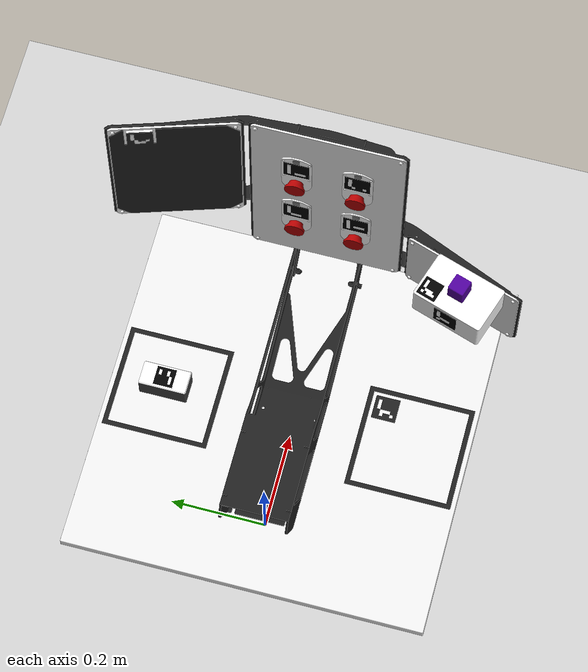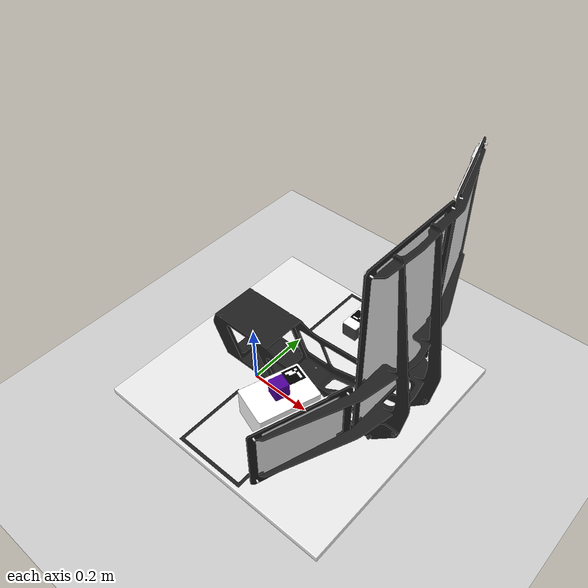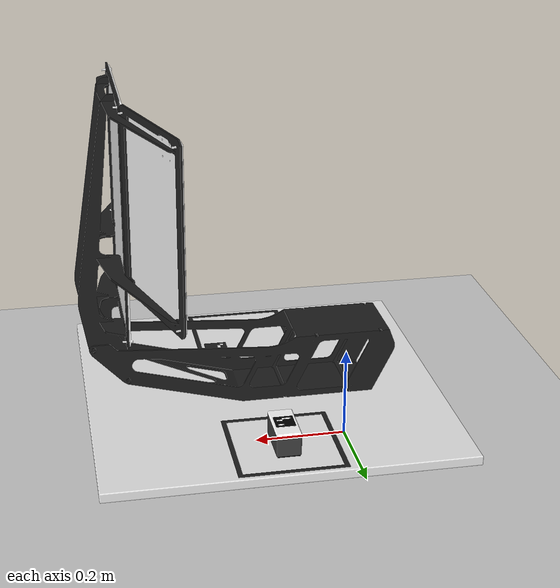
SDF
<sdf version="1.7">
 <world name="default">
  <light name="sun" type="directional">
   <pose>0 0 10 0 -0 0</pose>
   <diffuse>0.8 0.8 0.8 1</diffuse>
   <specular>0.2 0.2 0.2 1</specular>
   <attenuation>
    <range>1000</range>
    <constant>0.9</constant>
    <linear>0.01</linear>
    <quadratic>0.001</quadratic>
   </attenuation>
   <direction>-0.5 0.1 -0.9</direction>
   <spot><inner_angle>0</inner_angle><outer_angle>0</outer_angle><falloff>0</falloff></spot>
  </light>
  <model name="ground_plane">
   <static>1</static>
   <link name="link">
    <collision name="collision">
     <geometry><plane><normal>0 0 1</normal><size>100 100</size></plane></geometry>
     <surface>
      <contact><collide_bitmask>65535</collide_bitmask></contact>
      <friction><ode><mu>100</mu><mu2>50</mu2></ode></friction>
     </surface>
    </collision>
    <visual name="visual">
     <cast_shadows>0</cast_shadows>
     <geometry><plane><normal>0 0 1</normal><size>100 100</size></plane></geometry>
     <material>
      <script><uri>file://media/materials/scripts/gazebo.material</uri><name>Gazebo/Grey</name></script>
     </material>
    </visual>
   </link>
  </model>
  <gravity>0 0 -9.8</gravity>
  <magnetic_field>6e-06 2.3e-05 -4.2e-05</magnetic_field>
  <atmosphere type="adiabatic"/>
  <physics type="ode">
   <max_step_size>0.001</max_step_size>
   <real_time_factor>1</real_time_factor>
   <real_time_update_rate>1000</real_time_update_rate>
  </physics>
  <scene><ambient>0.4 0.4 0.4 1</ambient><background>0.7 0.7 0.7 1</background><shadows>1</shadows></scene>
  <spherical_coordinates>
   <surface_model>EARTH_WGS84</surface_model>
   <latitude_deg>0</latitude_deg>
   <longitude_deg>0</longitude_deg>
   <elevation>0</elevation>
   <heading_deg>0</heading_deg>
  </spherical_coordinates>
  <model name="ur3_sim">
   <joint name="cela_black_joint" type="fixed">
    <pose relative_to="__model__">-0.04 0 0.14 0 0 -1.5708</pose>
    <parent>world</parent>
    <child>cela_black</child>
   </joint>
   <link name="cela_black">
    <pose relative_to="cela_black_joint">0 0 0 0 -0 0</pose>
    <inertial>
     <mass>10</mass>
     <inertia><ixx>1</ixx><ixy>0</ixy><ixz>0</ixz><iyy>1</iyy><iyz>0</iyz><izz>1</izz></inertia>
    </inertial>
    <collision name="cela_black_collision">
     <geometry>
      <mesh>
       <scale>0.001 0.001 0.001</scale>
       <uri>/home/abdelrahman/catkin_ws_4/src/UR3_sim/ur3_sim_description/meshes/cell/ERC2022_cela_black.dae</uri>
      </mesh>
     </geometry>
    </collision>
    <visual name="cela_black_visual">
     <geometry>
      <mesh>
       <scale>0.001 0.001 0.001</scale>
       <uri>/home/abdelrahman/catkin_ws_4/src/UR3_sim/ur3_sim_description/meshes/cell/ERC2022_cela_black.dae</uri>
      </mesh>
     </geometry>
     <material>
      <script><name>Gazebo/Black</name><uri>file://media/materials/scripts/gazebo.material</uri></script>
     </material>
    </visual>
   </link>
   <joint name="cela_white_joint" type="fixed">
    <pose relative_to="__model__">-0.04 0 0.14 0 0 -1.5708</pose>
    <parent>world</parent>
    <child>cela_white</child>
   </joint>
   <link name="cela_white">
    <pose relative_to="cela_white_joint">0 0 0 0 -0 0</pose>
    <inertial>
     <mass>10</mass>
     <inertia><ixx>1</ixx><ixy>0</ixy><ixz>0</ixz><iyy>1</iyy><iyz>0</iyz><izz>1</izz></inertia>
    </inertial>
    <collision name="cela_white_collision">
     <geometry>
      <mesh>
       <scale>0.001 0.001 0.001</scale>
       <uri>/home/abdelrahman/catkin_ws_4/src/UR3_sim/ur3_sim_description/meshes/cell/ERC2022_cela_white.dae</uri>
      </mesh>
     </geometry>
    </collision>
    <visual name="cela_white_visual">
     <geometry>
      <mesh>
       <scale>0.001 0.001 0.001</scale>
       <uri>/home/abdelrahman/catkin_ws_4/src/UR3_sim/ur3_sim_description/meshes/cell/ERC2022_cela_white.dae</uri>
      </mesh>
     </geometry>
     <material>
      <script><name>Gazebo/White</name><uri>file://media/materials/scripts/gazebo.material</uri></script>
     </material>
    </visual>
   </link>
   <joint name="world_joint" type="fixed">
    <pose relative_to="__model__">0 0 0.28 0 -0 0</pose>
    <parent>world</parent>
    <child>base_link</child>
   </joint>
   <link name="base_link">
    <pose relative_to="world_joint">0 0 0 0 -0 0</pose>
    <inertial>
     <pose>0.408743 -0.045714 0.180714 0 -0 0</pose>
     <mass>70</mass>
     <inertia>
      <ixx>10.8079</ixx>
      <ixy>0.411303</ixy>
      <ixz>-0.869143</ixz>
      <iyy>9.13179</iyy>
      <iyz>0.706714</iyz>
      <izz>10.0353</izz>
     </inertia>
    </inertial>
    <collision name="base_link_fixed_joint_lump__box_bottom_collision">
     <pose>0.3816 -0.29 0.17 0 0 -1.88496</pose>
     <geometry>
      <mesh>
       <scale>0.001 0.001 0.001</scale>
       <uri>/home/abdelrahman/catkin_ws_4/src/UR3_sim/ur3_sim_description/meshes/box/ERC2022_box_bottom.dae</uri>
      </mesh>
     </geometry>
    </collision>
    <collision name="base_link_fixed_joint_lump__box_top_collision_1">
     <pose>0.3816 -0.29 0.17 0 0 -1.88496</pose>
     <geometry>
      <mesh>
       <scale>0.001 0.001 0.001</scale>
       <uri>/home/abdelrahman/catkin_ws_4/src/UR3_sim/ur3_sim_description/meshes/box/ERC2022_box_top.dae</uri>
      </mesh>
     </geometry>
    </collision>
    <collision name="base_link_fixed_joint_lump__button1_collision_2">
     <pose>0.477 0.06 0.35 1.5707 -0 -1.5707</pose>
     <geometry>
      <mesh>
       <scale>0.001 0.001 0.001</scale>
       <uri>/home/abdelrahman/catkin_ws_4/src/UR3_sim/ur3_sim_description/meshes/button/ERC2022_button_ID1.dae</uri>
      </mesh>
     </geometry>
    </collision>
    <collision name="base_link_fixed_joint_lump__button2_collision_3">
     <pose>0.477 -0.06 0.35 1.5707 -0 -1.5707</pose>
     <geometry>
      <mesh>
       <scale>0.001 0.001 0.001</scale>
       <uri>/home/abdelrahman/catkin_ws_4/src/UR3_sim/ur3_sim_description/meshes/button/ERC2022_button_ID2.dae</uri>
      </mesh>
     </geometry>
    </collision>
    <collision name="base_link_fixed_joint_lump__button3_collision_4">
     <pose>0.477 0.06 0.17 1.5707 -0 -1.5707</pose>
     <geometry>
      <mesh>
       <scale>0.001 0.001 0.001</scale>
       <uri>/home/abdelrahman/catkin_ws_4/src/UR3_sim/ur3_sim_description/meshes/button/ERC2022_button_ID3.dae</uri>
      </mesh>
     </geometry>
    </collision>
    <collision name="base_link_fixed_joint_lump__button4_collision_5">
     <pose>0.477 -0.06 0.17 1.5707 -0 -1.5707</pose>
     <geometry>
      <mesh>
       <scale>0.001 0.001 0.001</scale>
       <uri>/home/abdelrahman/catkin_ws_4/src/UR3_sim/ur3_sim_description/meshes/button/ERC2022_button_ID4.dae</uri>
      </mesh>
     </geometry>
    </collision>
    <collision name="base_link_fixed_joint_lump__imu_collision_6">
     <pose>0.19 0.259999 -0.14 -0.000139 4.6e-05 1.57084</pose>
     <geometry>
      <mesh>
       <scale>0.001 0.001 0.001</scale>
       <uri>/home/abdelrahman/catkin_ws_4/src/UR3_sim/ur3_sim_description/meshes/imu/ERC2022_IMU.dae</uri>
      </mesh>
     </geometry>
    </collision>
    <visual name="base_link_fixed_joint_lump__box_bottom_visual">
     <pose>0.3816 -0.29 0.17 0 0 -1.88496</pose>
     <geometry>
      <mesh>
       <scale>0.001 0.001 0.001</scale>
       <uri>/home/abdelrahman/catkin_ws_4/src/UR3_sim/ur3_sim_description/meshes/box/ERC2022_box_bottom.dae</uri>
      </mesh>
     </geometry>
    </visual>
    <visual name="base_link_fixed_joint_lump__box_top_visual_1">
     <pose>0.3816 -0.29 0.17 0 0 -1.88496</pose>
     <geometry>
      <mesh>
       <scale>0.001 0.001 0.001</scale>
       <uri>/home/abdelrahman/catkin_ws_4/src/UR3_sim/ur3_sim_description/meshes/box/ERC2022_box_top.dae</uri>
      </mesh>
     </geometry>
    </visual>
    <visual name="base_link_fixed_joint_lump__button1_visual_2">
     <pose>0.477 0.06 0.35 1.5707 -0 -1.5707</pose>
     <geometry>
      <mesh>
       <scale>0.001 0.001 0.001</scale>
       <uri>/home/abdelrahman/catkin_ws_4/src/UR3_sim/ur3_sim_description/meshes/button/ERC2022_button_ID1.dae</uri>
      </mesh>
     </geometry>
    </visual>
    <visual name="base_link_fixed_joint_lump__button2_visual_3">
     <pose>0.477 -0.06 0.35 1.5707 -0 -1.5707</pose>
     <geometry>
      <mesh>
       <scale>0.001 0.001 0.001</scale>
       <uri>/home/abdelrahman/catkin_ws_4/src/UR3_sim/ur3_sim_description/meshes/button/ERC2022_button_ID2.dae</uri>
      </mesh>
     </geometry>
    </visual>
    <visual name="base_link_fixed_joint_lump__button3_visual_4">
     <pose>0.477 0.06 0.17 1.5707 -0 -1.5707</pose>
     <geometry>
      <mesh>
       <scale>0.001 0.001 0.001</scale>
       <uri>/home/abdelrahman/catkin_ws_4/src/UR3_sim/ur3_sim_description/meshes/button/ERC2022_button_ID3.dae</uri>
      </mesh>
     </geometry>
    </visual>
    <visual name="base_link_fixed_joint_lump__button4_visual_5">
     <pose>0.477 -0.06 0.17 1.5707 -0 -1.5707</pose>
     <geometry>
      <mesh>
       <scale>0.001 0.001 0.001</scale>
       <uri>/home/abdelrahman/catkin_ws_4/src/UR3_sim/ur3_sim_description/meshes/button/ERC2022_button_ID4.dae</uri>
      </mesh>
     </geometry>
    </visual>
    <visual name="base_link_fixed_joint_lump__imu_visual_6">
     <pose>0.19 0.259999 -0.14 -0.000139 4.6e-05 1.57084</pose>
     <geometry>
      <mesh>
       <scale>0.001 0.001 0.001</scale>
       <uri>/home/abdelrahman/catkin_ws_4/src/UR3_sim/ur3_sim_description/meshes/imu/ERC2022_IMU.dae</uri>
      </mesh>
     </geometry>
    </visual>
   </link>
  </model>
 </world>
</sdf>
